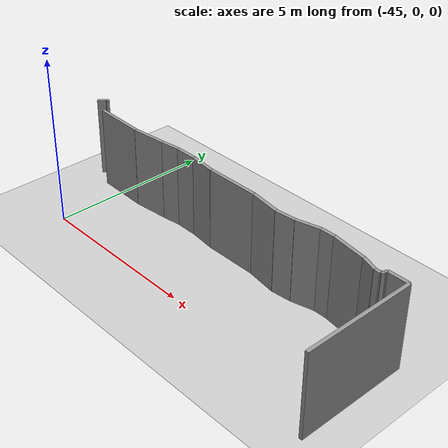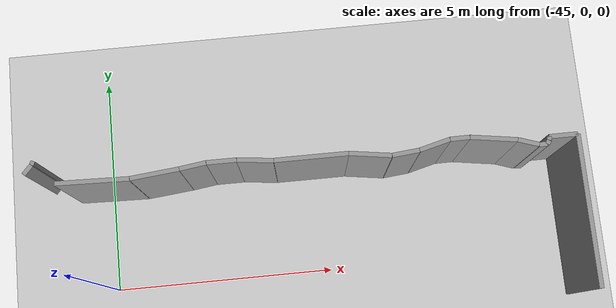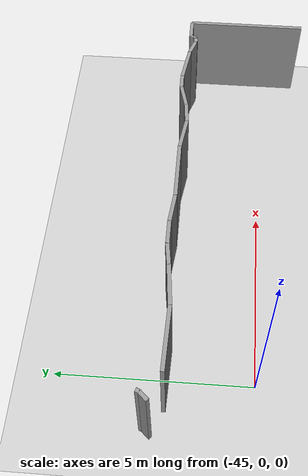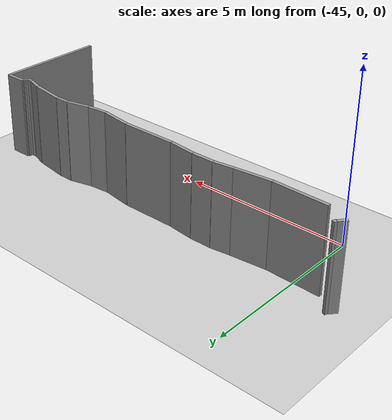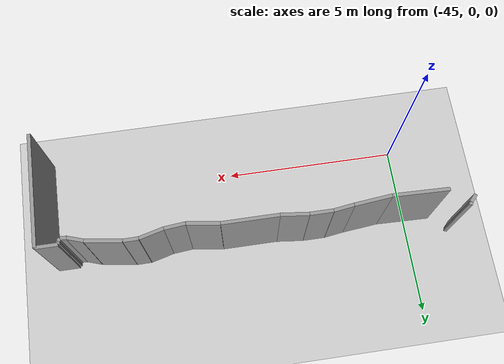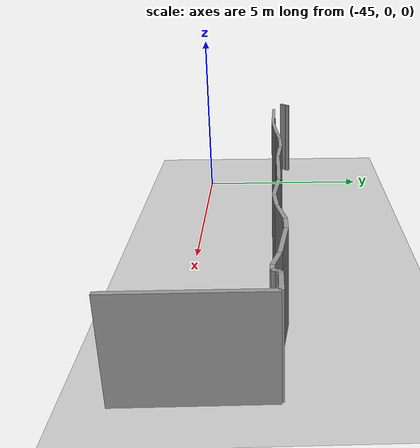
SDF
<sdf version="1.6">
 <world name="default">
  <model name="ground_plane">
   <static>1</static>
   <link name="link">
    <collision name="collision">
     <geometry><plane><normal>0 0 1</normal><size>100 100</size></plane></geometry>
     <surface><friction><ode><mu>100</mu><mu2>50</mu2></ode></friction></surface>
    </collision>
    <visual name="visual">
     <cast_shadows>0</cast_shadows>
     <geometry><plane><normal>0 0 1</normal><size>100 100</size></plane></geometry>
     <material>
      <script><uri>file://media/materials/scripts/gazebo.material</uri><name>Gazebo/Grey</name></script>
     </material>
    </visual>
   </link>
  </model>
  <model name="0510030939_A_40_1_103">
   <static>1</static>
   <link name="Wall_25">
    <collision name="Wall_25_Collision">
     <geometry><box><size>0.0911197295433 0.1 2.5</size></box></geometry>
     <pose>0.0455598647716 0 1.25 0 0 0</pose>
    </collision>
    <visual name="Wall_25_Visual">
     <pose>0.0455598647716 0 1.25 0 0 0</pose>
     <geometry><box><size>0.0911197295433 0.1 2.5</size></box></geometry>
     <material>
      <script><uri>file://media/materials/scripts/gazebo.material</uri><name>Gazebo/Grey</name></script>
      <ambient>1 1 1 1</ambient>
     </material>
    </visual>
    <pose>11.4440766274 -14.9301394669 0 0 0 -1.99326871918</pose>
   </link>
   <link name="Wall_26">
    <collision name="Wall_26_Collision">
     <geometry><box><size>0.258692454681 0.1 2.5</size></box></geometry>
     <pose>0.12934622734 0 1.25 0 0 0</pose>
    </collision>
    <visual name="Wall_26_Visual">
     <pose>0.12934622734 0 1.25 0 0 0</pose>
     <geometry><box><size>0.258692454681 0.1 2.5</size></box></geometry>
     <material>
      <script><uri>file://media/materials/scripts/gazebo.material</uri><name>Gazebo/Grey</name></script>
      <ambient>1 1 1 1</ambient>
     </material>
    </visual>
    <pose>11.4067160149 -15.0132477682 0 0 0 -2.31102356874</pose>
   </link>
   <link name="Wall_30">
    <collision name="Wall_30_Collision">
     <geometry><box><size>1.59668804053 0.1 2.5</size></box></geometry>
     <pose>0.798344020266 0 1.25 0 0 0</pose>
    </collision>
    <visual name="Wall_30_Visual">
     <pose>0.798344020266 0 1.25 0 0 0</pose>
     <geometry><box><size>1.59668804053 0.1 2.5</size></box></geometry>
     <material>
      <script><uri>file://media/materials/scripts/gazebo.material</uri><name>Gazebo/Grey</name></script>
      <ambient>1 1 1 1</ambient>
     </material>
    </visual>
    <pose>11.8803316707 -15.4618292722 0 0 0 -0.0274612477568</pose>
   </link>
   <link name="Wall_31">
    <collision name="Wall_31_Collision">
     <geometry><box><size>1.07361924244 0.1 2.5</size></box></geometry>
     <pose>0.536809621221 0 1.25 0 0 0</pose>
    </collision>
    <visual name="Wall_31_Visual">
     <pose>0.536809621221 0 1.25 0 0 0</pose>
     <geometry><box><size>1.07361924244 0.1 2.5</size></box></geometry>
     <material>
      <script><uri>file://media/materials/scripts/gazebo.material</uri><name>Gazebo/Grey</name></script>
      <ambient>1 1 1 1</ambient>
     </material>
    </visual>
    <pose>13.4764177018 -15.5056708073 0 0 0 0.101611952717</pose>
   </link>
   <link name="Wall_32">
    <collision name="Wall_32_Collision">
     <geometry><box><size>0.586719998756 0.1 2.5</size></box></geometry>
     <pose>0.293359999378 0 1.25 0 0 0</pose>
    </collision>
    <visual name="Wall_32_Visual">
     <pose>0.293359999378 0 1.25 0 0 0</pose>
     <geometry><box><size>0.586719998756 0.1 2.5</size></box></geometry>
     <material>
      <script><uri>file://media/materials/scripts/gazebo.material</uri><name>Gazebo/Grey</name></script>
      <ambient>1 1 1 1</ambient>
     </material>
    </visual>
    <pose>14.5444991581 -15.3967658926 0 0 0 0.136659255228</pose>
   </link>
   <link name="Wall_33">
    <collision name="Wall_33_Collision">
     <geometry><box><size>0.654829750994 0.1 2.5</size></box></geometry>
     <pose>0.327414875497 0 1.25 0 0 0</pose>
    </collision>
    <visual name="Wall_33_Visual">
     <pose>0.327414875497 0 1.25 0 0 0</pose>
     <geometry><box><size>0.654829750994 0.1 2.5</size></box></geometry>
     <material>
      <script><uri>file://media/materials/scripts/gazebo.material</uri><name>Gazebo/Grey</name></script>
      <ambient>1 1 1 1</ambient>
     </material>
    </visual>
    <pose>15.1257489596 -15.3168345141 0 0 0 -0.00271685727806</pose>
   </link>
   <link name="Wall_34">
    <collision name="Wall_34_Collision">
     <geometry><box><size>0.79578620243 0.1 2.5</size></box></geometry>
     <pose>0.397893101215 0 1.25 0 0 0</pose>
    </collision>
    <visual name="Wall_34_Visual">
     <pose>0.397893101215 0 1.25 0 0 0</pose>
     <geometry><box><size>0.79578620243 0.1 2.5</size></box></geometry>
     <material>
      <script><uri>file://media/materials/scripts/gazebo.material</uri><name>Gazebo/Grey</name></script>
      <ambient>1 1 1 1</ambient>
     </material>
    </visual>
    <pose>15.7805762938 -15.3186135909 0 0 0 -0.110569048638</pose>
   </link>
   <link name="Wall_35">
    <collision name="Wall_35_Collision">
     <geometry><box><size>1.6155288038 0.1 2.5</size></box></geometry>
     <pose>0.807764401902 0 1.25 0 0 0</pose>
    </collision>
    <visual name="Wall_35_Visual">
     <pose>0.807764401902 0 1.25 0 0 0</pose>
     <geometry><box><size>1.6155288038 0.1 2.5</size></box></geometry>
     <material>
      <script><uri>file://media/materials/scripts/gazebo.material</uri><name>Gazebo/Grey</name></script>
      <ambient>1 1 1 1</ambient>
     </material>
    </visual>
    <pose>16.5715030022 -15.406423738 0 0 0 -7.86596395808e-05</pose>
   </link>
   <link name="Wall_36">
    <collision name="Wall_36_Collision">
     <geometry><box><size>0.931280798708 0.1 2.5</size></box></geometry>
     <pose>0.465640399354 0 1.25 0 0 0</pose>
    </collision>
    <visual name="Wall_36_Visual">
     <pose>0.465640399354 0 1.25 0 0 0</pose>
     <geometry><box><size>0.931280798708 0.1 2.5</size></box></geometry>
     <material>
      <script><uri>file://media/materials/scripts/gazebo.material</uri><name>Gazebo/Grey</name></script>
      <ambient>1 1 1 1</ambient>
     </material>
    </visual>
    <pose>18.187031801 -15.4065508149 0 0 0 -0.144598707622</pose>
   </link>
   <link name="Wall_37">
    <collision name="Wall_37_Collision">
     <geometry><box><size>0.600963611716 0.1 2.5</size></box></geometry>
     <pose>0.300481805858 0 1.25 0 0 0</pose>
    </collision>
    <visual name="Wall_37_Visual">
     <pose>0.300481805858 0 1.25 0 0 0</pose>
     <geometry><box><size>0.600963611716 0.1 2.5</size></box></geometry>
     <material>
      <script><uri>file://media/materials/scripts/gazebo.material</uri><name>Gazebo/Grey</name></script>
      <ambient>1 1 1 1</ambient>
     </material>
    </visual>
    <pose>19.1085935763 -15.5407440353 0 0 0 0.0967860884634</pose>
   </link>
   <link name="Wall_38">
    <collision name="Wall_38_Collision">
     <geometry><box><size>0.703247013756 0.1 2.5</size></box></geometry>
     <pose>0.351623506878 0 1.25 0 0 0</pose>
    </collision>
    <visual name="Wall_38_Visual">
     <pose>0.351623506878 0 1.25 0 0 0</pose>
     <geometry><box><size>0.703247013756 0.1 2.5</size></box></geometry>
     <material>
      <script><uri>file://media/materials/scripts/gazebo.material</uri><name>Gazebo/Grey</name></script>
      <ambient>1 1 1 1</ambient>
     </material>
    </visual>
    <pose>19.7067446072 -15.4826698859 0 0 0 0.250719933261</pose>
   </link>
   <link name="Wall_39">
    <collision name="Wall_39_Collision">
     <geometry><box><size>0.427888517048 0.1 2.5</size></box></geometry>
     <pose>0.213944258524 0 1.25 0 0 0</pose>
    </collision>
    <visual name="Wall_39_Visual">
     <pose>0.213944258524 0 1.25 0 0 0</pose>
     <geometry><box><size>0.427888517048 0.1 2.5</size></box></geometry>
     <material>
      <script><uri>file://media/materials/scripts/gazebo.material</uri><name>Gazebo/Grey</name></script>
      <ambient>1 1 1 1</ambient>
     </material>
    </visual>
    <pose>20.3880039394 -15.308193284 0 0 0 0.00980069599143</pose>
   </link>
   <link name="Wall_40">
    <collision name="Wall_40_Collision">
     <geometry><box><size>1.0334365023 0.1 2.5</size></box></geometry>
     <pose>0.516718251149 0 1.25 0 0 0</pose>
    </collision>
    <visual name="Wall_40_Visual">
     <pose>0.516718251149 0 1.25 0 0 0</pose>
     <geometry><box><size>1.0334365023 0.1 2.5</size></box></geometry>
     <material>
      <script><uri>file://media/materials/scripts/gazebo.material</uri><name>Gazebo/Grey</name></script>
      <ambient>1 1 1 1</ambient>
     </material>
    </visual>
    <pose>20.8158719065 -15.3039997458 0 0 0 -0.149218280941</pose>
   </link>
   <link name="Wall_41">
    <collision name="Wall_41_Collision">
     <geometry><box><size>0.469003908946 0.1 2.5</size></box></geometry>
     <pose>0.234501954473 0 1.25 0 0 0</pose>
    </collision>
    <visual name="Wall_41_Visual">
     <pose>0.234501954473 0 1.25 0 0 0</pose>
     <geometry><box><size>0.469003908946 0.1 2.5</size></box></geometry>
     <material>
      <script><uri>file://media/materials/scripts/gazebo.material</uri><name>Gazebo/Grey</name></script>
      <ambient>1 1 1 1</ambient>
     </material>
    </visual>
    <pose>21.8378244432 -15.457635734 0 0 0 -0.324578068068</pose>
   </link>
   <link name="Wall_42">
    <collision name="Wall_42_Collision">
     <geometry><box><size>0.170334692848 0.1 2.5</size></box></geometry>
     <pose>0.0851673464239 0 1.25 0 0 0</pose>
    </collision>
    <visual name="Wall_42_Visual">
     <pose>0.0851673464239 0 1.25 0 0 0</pose>
     <geometry><box><size>0.170334692848 0.1 2.5</size></box></geometry>
     <material>
      <script><uri>file://media/materials/scripts/gazebo.material</uri><name>Gazebo/Grey</name></script>
      <ambient>1 1 1 1</ambient>
     </material>
    </visual>
    <pose>22.282339486 -15.607205261 0 0 0 -0.0246218888947</pose>
   </link>
   <link name="Wall_43">
    <collision name="Wall_43_Collision">
     <geometry><box><size>0.0921959426893 0.1 2.5</size></box></geometry>
     <pose>0.0460979713446 0 1.25 0 0 0</pose>
    </collision>
    <visual name="Wall_43_Visual">
     <pose>0.0460979713446 0 1.25 0 0 0</pose>
     <geometry><box><size>0.0921959426893 0.1 2.5</size></box></geometry>
     <material>
      <script><uri>file://media/materials/scripts/gazebo.material</uri><name>Gazebo/Grey</name></script>
      <ambient>1 1 1 1</ambient>
     </material>
    </visual>
    <pose>22.4526225498 -15.6113987991 0 0 0 0.944938823974</pose>
   </link>
   <link name="Wall_44">
    <collision name="Wall_44_Collision">
     <geometry><box><size>0.0832140343151 0.1 2.5</size></box></geometry>
     <pose>0.0416070171575 0 1.25 0 0 0</pose>
    </collision>
    <visual name="Wall_44_Visual">
     <pose>0.0416070171575 0 1.25 0 0 0</pose>
     <geometry><box><size>0.0832140343151 0.1 2.5</size></box></geometry>
     <material>
      <script><uri>file://media/materials/scripts/gazebo.material</uri><name>Gazebo/Grey</name></script>
      <ambient>1 1 1 1</ambient>
     </material>
    </visual>
    <pose>22.506630238 -15.5366775741 0 0 0 1.52038036991</pose>
   </link>
   <link name="Wall_45">
    <collision name="Wall_45_Collision">
     <geometry><box><size>0.627251644058 0.1 2.5</size></box></geometry>
     <pose>0.313625822029 0 1.25 0 0 0</pose>
    </collision>
    <visual name="Wall_45_Visual">
     <pose>0.313625822029 0 1.25 0 0 0</pose>
     <geometry><box><size>0.627251644058 0.1 2.5</size></box></geometry>
     <material>
      <script><uri>file://media/materials/scripts/gazebo.material</uri><name>Gazebo/Grey</name></script>
      <ambient>1 1 1 1</ambient>
     </material>
    </visual>
    <pose>22.5108237761 -15.4535692728 0 0 0 0.0</pose>
   </link>
   <link name="Wall_46">
    <collision name="Wall_46_Collision">
     <geometry><box><size>3.314038822 0.1 2.5</size></box></geometry>
     <pose>1.657019411 0 1.25 0 0 0</pose>
    </collision>
    <visual name="Wall_46_Visual">
     <pose>1.657019411 0 1.25 0 0 0</pose>
     <geometry><box><size>3.314038822 0.1 2.5</size></box></geometry>
     <material>
      <script><uri>file://media/materials/scripts/gazebo.material</uri><name>Gazebo/Grey</name></script>
      <ambient>1 1 1 1</ambient>
     </material>
    </visual>
    <pose>23.1380754201 -15.4535692728 0 0 0 -1.57079632679</pose>
   </link>
   <pose>-57.65 17.6622597452 0 0 0 0</pose>
  </model>
 </world>
</sdf>
